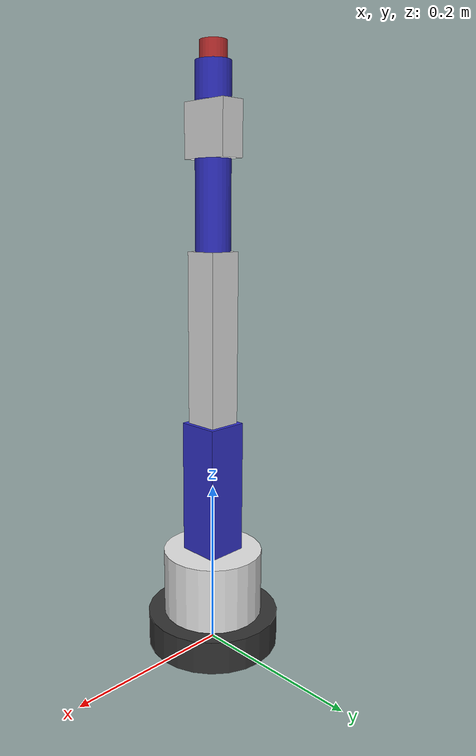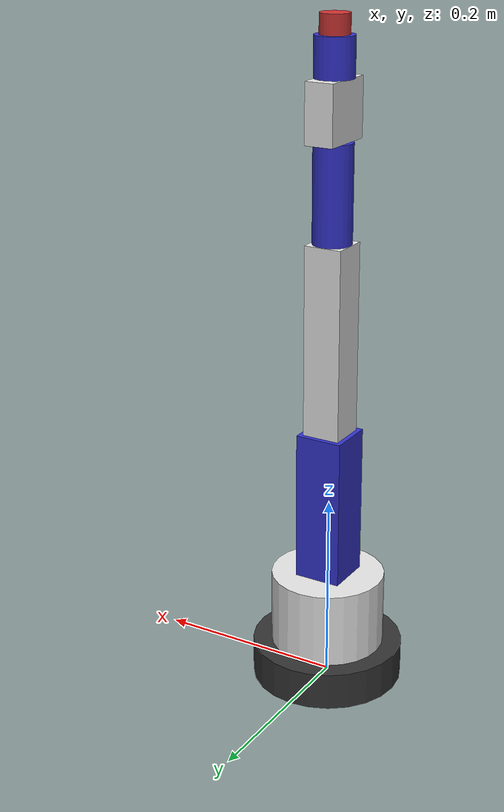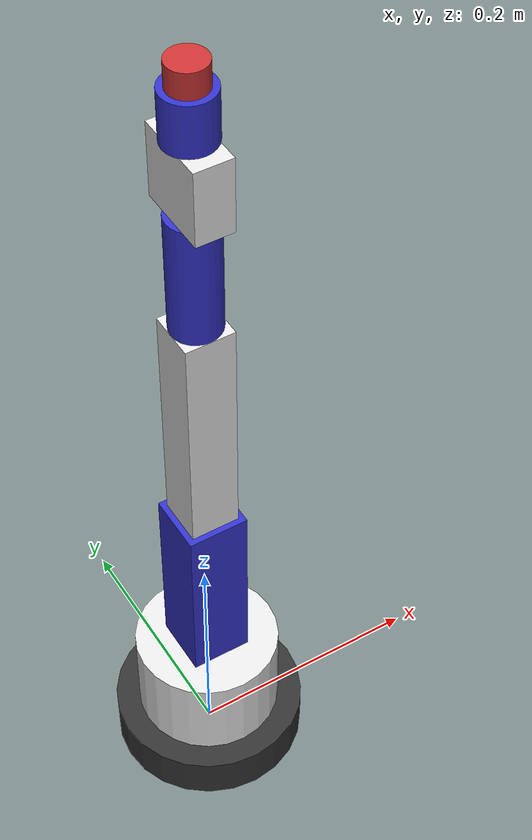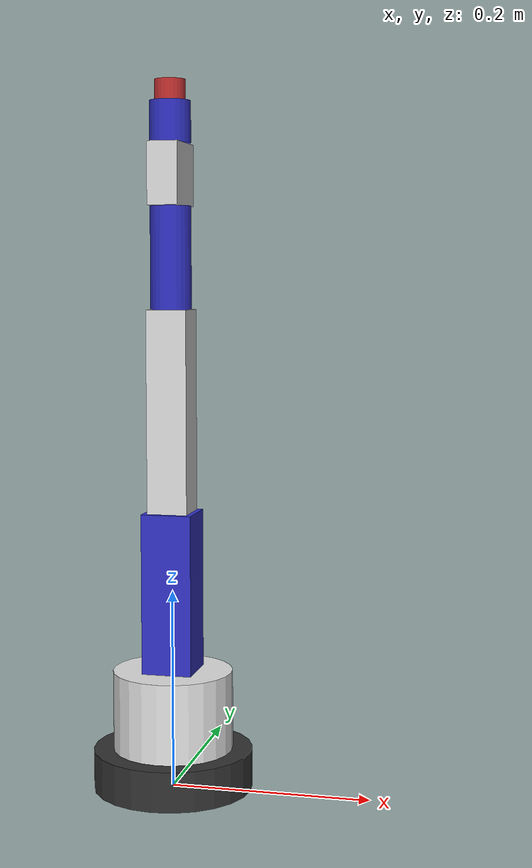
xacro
<?xml version="1.0"?>
<robot xmlns:xacro="http://www.ros.org/wiki/xacro" name="niryo_ned2">

  <!-- Simple Niryo Ned2 Robot URDF -->
  <!-- This is a simplified version for basic simulation -->

  <!-- Base link -->
  <link name="base_link">
    <visual>
      <origin xyz="0 0 0.02" rpy="0 0 0"/>
      <geometry>
        <cylinder radius="0.08" length="0.04"/>
      </geometry>
      <material name="black">
        <color rgba="0.2 0.2 0.2 1"/>
      </material>
    </visual>
    <collision>
      <origin xyz="0 0 0.02" rpy="0 0 0"/>
      <geometry>
        <cylinder radius="0.08" length="0.04"/>
      </geometry>
    </collision>
    <inertial>
      <origin xyz="0 0 0.02" rpy="0 0 0"/>
      <mass value="1.0"/>
      <inertia ixx="0.001" ixy="0.0" ixz="0.0"
               iyy="0.001" iyz="0.0" izz="0.001"/>
    </inertial>
  </link>

  <!-- Link 1 - Base rotation -->
  <link name="link_1">
    <visual>
      <origin xyz="0 0 0.04" rpy="0 0 0"/>
      <geometry>
        <cylinder radius="0.06" length="0.08"/>
      </geometry>
      <material name="white">
        <color rgba="0.9 0.9 0.9 1"/>
      </material>
    </visual>
    <collision>
      <origin xyz="0 0 0.04" rpy="0 0 0"/>
      <geometry>
        <cylinder radius="0.06" length="0.08"/>
      </geometry>
    </collision>
    <inertial>
      <origin xyz="0 0 0.04" rpy="0 0 0"/>
      <mass value="0.8"/>
      <inertia ixx="0.001" ixy="0.0" ixz="0.0"
               iyy="0.001" iyz="0.0" izz="0.001"/>
    </inertial>
  </link>

  <!-- Joint 1 -->
  <joint name="joint_1" type="revolute">
    <parent link="base_link"/>
    <child link="link_1"/>
    <origin xyz="0 0 0.04" rpy="0 0 0"/>
    <axis xyz="0 0 1"/>
    <limit lower="-3.14" upper="3.14" effort="10" velocity="2"/>
  </joint>

  <!-- Link 2 - First arm segment -->
  <link name="link_2">
    <visual>
      <origin xyz="0 0 0.08" rpy="0 0 0"/>
      <geometry>
        <box size="0.05 0.05 0.16"/>
      </geometry>
      <material name="blue">
        <color rgba="0.2 0.2 0.8 1"/>
      </material>
    </visual>
    <collision>
      <origin xyz="0 0 0.08" rpy="0 0 0"/>
      <geometry>
        <box size="0.05 0.05 0.16"/>
      </geometry>
    </collision>
    <inertial>
      <origin xyz="0 0 0.08" rpy="0 0 0"/>
      <mass value="0.6"/>
      <inertia ixx="0.001" ixy="0.0" ixz="0.0"
               iyy="0.001" iyz="0.0" izz="0.001"/>
    </inertial>
  </link>

  <!-- Joint 2 -->
  <joint name="joint_2" type="revolute">
    <parent link="link_1"/>
    <child link="link_2"/>
    <origin xyz="0 0 0.08" rpy="0 0 0"/>
    <axis xyz="0 1 0"/>
    <limit lower="-1.4" upper="1.4" effort="10" velocity="2"/>
  </joint>

  <!-- Link 3 - Second arm segment -->
  <link name="link_3">
    <visual>
      <origin xyz="0 0 0.1" rpy="0 0 0"/>
      <geometry>
        <box size="0.04 0.04 0.2"/>
      </geometry>
      <material name="white"/>
    </visual>
    <collision>
      <origin xyz="0 0 0.1" rpy="0 0 0"/>
      <geometry>
        <box size="0.04 0.04 0.2"/>
      </geometry>
    </collision>
    <inertial>
      <origin xyz="0 0 0.1" rpy="0 0 0"/>
      <mass value="0.5"/>
      <inertia ixx="0.001" ixy="0.0" ixz="0.0"
               iyy="0.001" iyz="0.0" izz="0.001"/>
    </inertial>
  </link>

  <!-- Joint 3 -->
  <joint name="joint_3" type="revolute">
    <parent link="link_2"/>
    <child link="link_3"/>
    <origin xyz="0 0 0.16" rpy="0 0 0"/>
    <axis xyz="0 1 0"/>
    <limit lower="-1.57" upper="1.57" effort="10" velocity="2"/>
  </joint>

  <!-- Link 4 - Wrist roll -->
  <link name="link_4">
    <visual>
      <origin xyz="0 0 0.05" rpy="0 0 0"/>
      <geometry>
        <cylinder radius="0.02" length="0.1"/>
      </geometry>
      <material name="blue"/>
    </visual>
    <collision>
      <origin xyz="0 0 0.05" rpy="0 0 0"/>
      <geometry>
        <cylinder radius="0.02" length="0.1"/>
      </geometry>
    </collision>
    <inertial>
      <origin xyz="0 0 0.05" rpy="0 0 0"/>
      <mass value="0.3"/>
      <inertia ixx="0.001" ixy="0.0" ixz="0.0"
               iyy="0.001" iyz="0.0" izz="0.001"/>
    </inertial>
  </link>

  <!-- Joint 4 -->
  <joint name="joint_4" type="revolute">
    <parent link="link_3"/>
    <child link="link_4"/>
    <origin xyz="0 0 0.2" rpy="0 0 0"/>
    <axis xyz="0 0 1"/>
    <limit lower="-1.92" upper="1.92" effort="5" velocity="2"/>
  </joint>

  <!-- Link 5 - Wrist pitch -->
  <link name="link_5">
    <visual>
      <origin xyz="0 0 0.03" rpy="0 0 0"/>
      <geometry>
        <box size="0.03 0.06 0.06"/>
      </geometry>
      <material name="white"/>
    </visual>
    <collision>
      <origin xyz="0 0 0.03" rpy="0 0 0"/>
      <geometry>
        <box size="0.03 0.06 0.06"/>
      </geometry>
    </collision>
    <inertial>
      <origin xyz="0 0 0.03" rpy="0 0 0"/>
      <mass value="0.2"/>
      <inertia ixx="0.001" ixy="0.0" ixz="0.0"
               iyy="0.001" iyz="0.0" izz="0.001"/>
    </inertial>
  </link>

  <!-- Joint 5 -->
  <joint name="joint_5" type="revolute">
    <parent link="link_4"/>
    <child link="link_5"/>
    <origin xyz="0 0 0.1" rpy="0 0 0"/>
    <axis xyz="0 1 0"/>
    <limit lower="-2.97" upper="2.97" effort="5" velocity="2"/>
  </joint>

  <!-- Link 6 - Wrist roll (end effector mount) -->
  <link name="link_6">
    <visual>
      <origin xyz="0 0 0.02" rpy="0 0 0"/>
      <geometry>
        <cylinder radius="0.02" length="0.04"/>
      </geometry>
      <material name="blue"/>
    </visual>
    <collision>
      <origin xyz="0 0 0.02" rpy="0 0 0"/>
      <geometry>
        <cylinder radius="0.02" length="0.04"/>
      </geometry>
    </collision>
    <inertial>
      <origin xyz="0 0 0.02" rpy="0 0 0"/>
      <mass value="0.1"/>
      <inertia ixx="0.001" ixy="0.0" ixz="0.0"
               iyy="0.001" iyz="0.0" izz="0.001"/>
    </inertial>
  </link>

  <!-- Joint 6 -->
  <joint name="joint_6" type="revolute">
    <parent link="link_5"/>
    <child link="link_6"/>
    <origin xyz="0 0 0.06" rpy="0 0 0"/>
    <axis xyz="0 0 1"/>
    <limit lower="-3.14" upper="3.14" effort="5" velocity="2"/>
  </joint>

  <!-- End effector link (tool flange) -->
  <link name="tool_link">
    <visual>
      <origin xyz="0 0 0.01" rpy="0 0 0"/>
      <geometry>
        <cylinder radius="0.015" length="0.02"/>
      </geometry>
      <material name="red">
        <color rgba="0.8 0.2 0.2 1"/>
      </material>
    </visual>
    <collision>
      <origin xyz="0 0 0.01" rpy="0 0 0"/>
      <geometry>
        <cylinder radius="0.015" length="0.02"/>
      </geometry>
    </collision>
    <inertial>
      <origin xyz="0 0 0.01" rpy="0 0 0"/>
      <mass value="0.05"/>
      <inertia ixx="0.001" ixy="0.0" ixz="0.0"
               iyy="0.001" iyz="0.0" izz="0.001"/>
    </inertial>
  </link>

  <!-- Tool joint -->
  <joint name="tool_joint" type="fixed">
    <parent link="link_6"/>
    <child link="tool_link"/>
    <origin xyz="0 0 0.04" rpy="0 0 0"/>
  </joint>

</robot>
